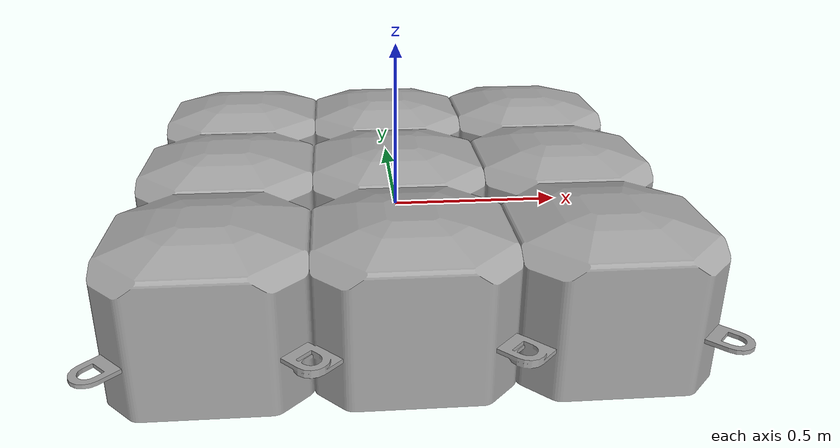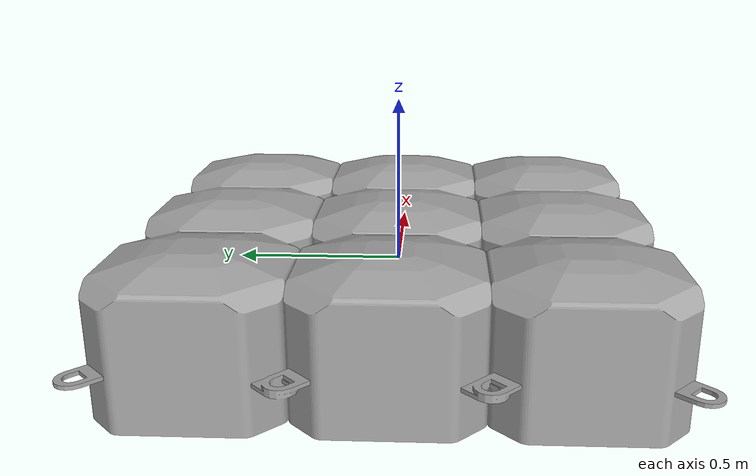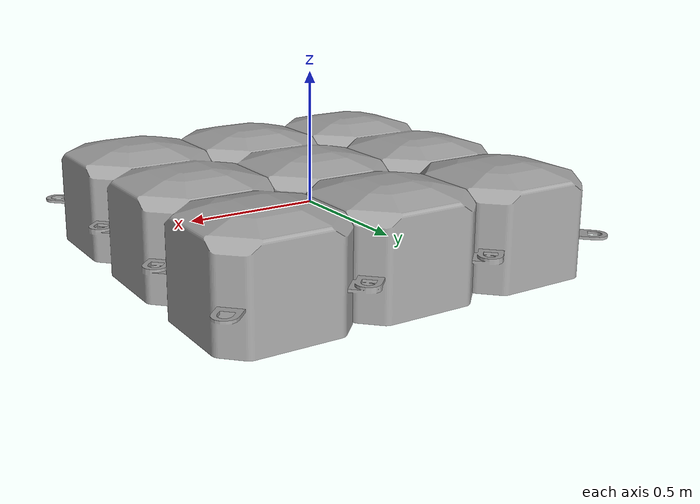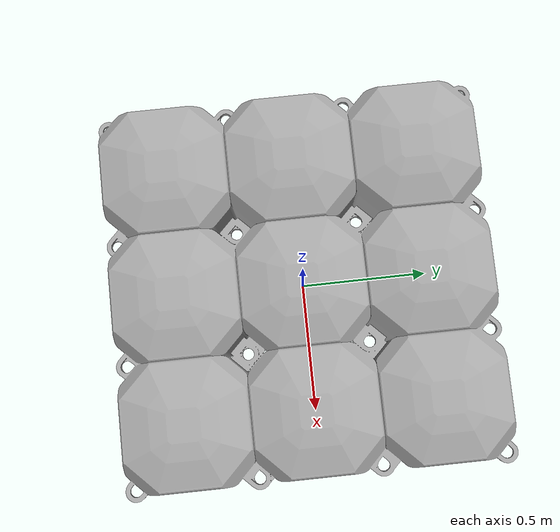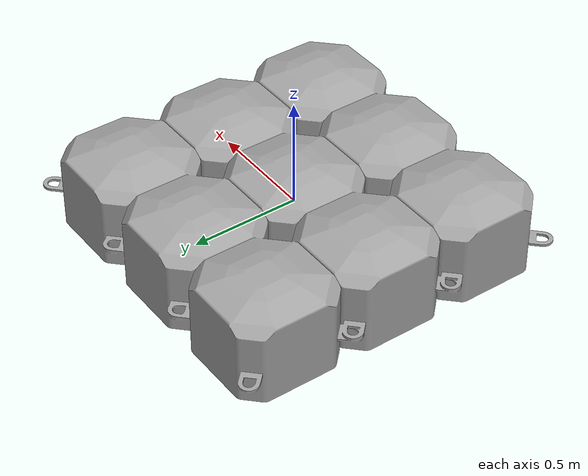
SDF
<?xml version="1.0"?>
<sdf version="1.5">
  <model name="dock_block_3x3">
    <static>false</static>
    <link name="link">
      <velocity_decay>
        <linear>0.001</linear>
        <angular>0.001</angular>
      </velocity_decay>
      <inertial>
        <pose>0 0 -2 0 0 0</pose>
        <mass>90</mass>
        <inertia>
          <ixx>2.5137</ixx>
          <ixy>0</ixy>
          <ixz>0</ixz>
          <iyy>2.5137</iyy>
          <iyz>0</iyz>
          <izz>0.5386</izz>
        </inertia>
      </inertial>
      <collision name="collision">
        <pose>0 0 0 0 0 0</pose>
        <geometry>
          <box>
            <size>1.5 1.5 0.4</size>
          </box>
        </geometry>
      </collision>
      <visual name="visual">
        <pose> 0 0 0.2 0 0 0 </pose>
        <geometry>
          <mesh>
            <uri>file://dock_block_3x3/mesh/dock_block_3x3.dae</uri>
          </mesh>
        </geometry>
      </visual>
    </link>
  <plugin name="BuoyancyPlugin" filename="libbuoyancy_gazebo_plugin.so">
      <wave_model>ocean_waves</wave_model>
      <fluid_density>1000</fluid_density>
      <fluid_level>0</fluid_level>
      <linear_drag>1000.0</linear_drag>
      <angular_drag>200.0</angular_drag>
      <buoyancy name="buoyancy_base">
        <link_name>link</link_name>
      	<pose>0 0 -0.2 0 0 0</pose>
        <geometry>
          <box>
            <size>1.5 1.5 .4</size>
          </box>
        </geometry>
      </buoyancy>
    </plugin>
  </model>
</sdf>
